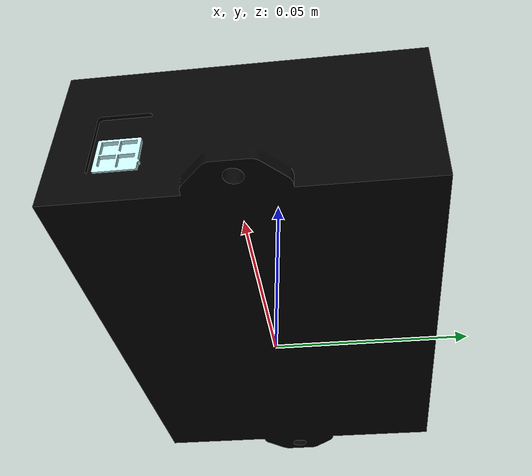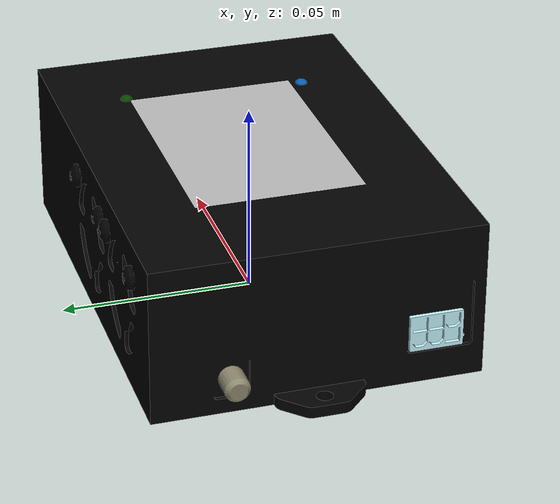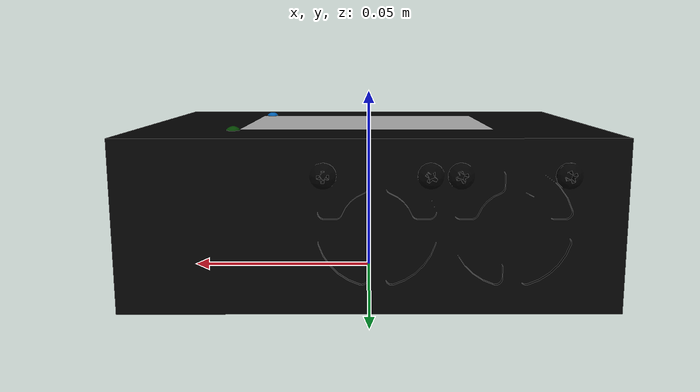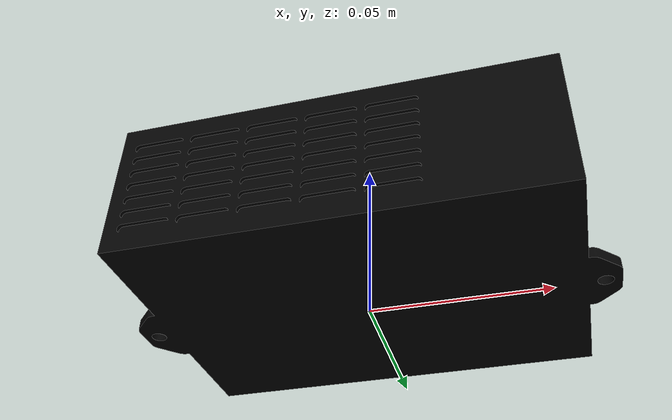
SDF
<?xml version="1.0" ?>
<sdf version="1.6">
  <model name="OC250">
    <static>true</static>
    <link name="link">
      <collision name="collision">
        <geometry>
          <mesh>
            <scale>1 1 1</scale>
            <uri>model://../meshes/OC250.dae</uri>
          </mesh>
        </geometry>
      </collision>
      <visual name="visual">
        <geometry>
          <mesh>
            <scale>1 1 1</scale>
            <uri>model://../meshes/OC250.dae</uri>
          </mesh>
        </geometry>
      </visual>
    </link>
  </model>
</sdf>
